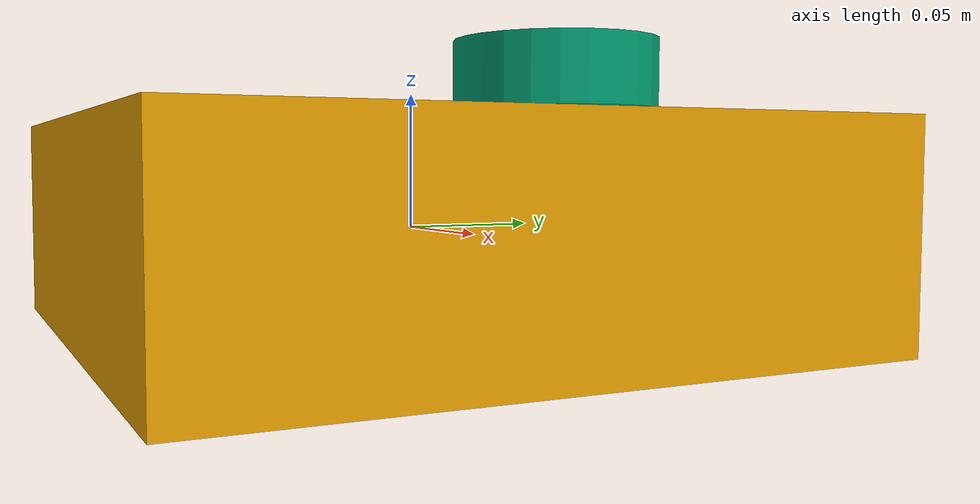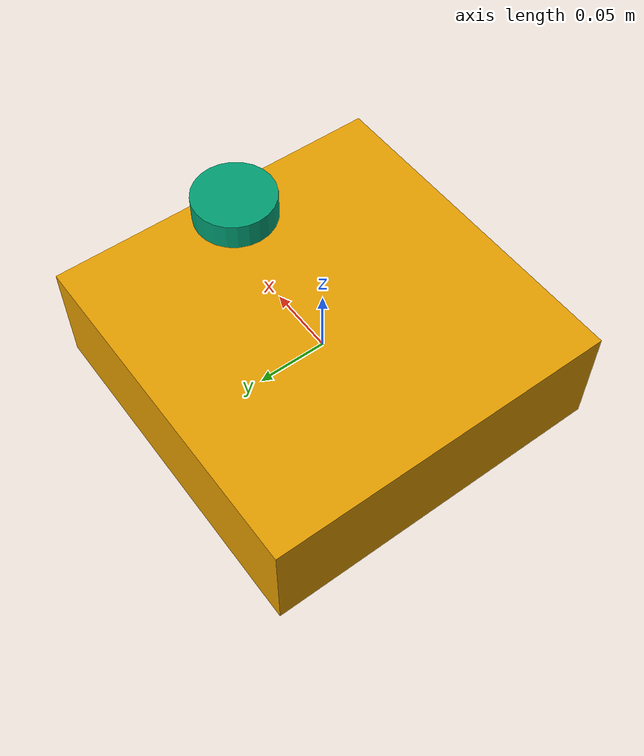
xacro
<?xml version="1.0"?><robot xmlns:xacro="http://www.ros.org/wiki/xacro" name="robofest_drone"><link name="base_link"><inertial><mass value="0.42"/><inertia ixx="0.001" ixy="0" ixz="0" iyy="0.001" iyz="0" izz="0.001"/></inertial><visual><geometry><box size="0.25 0.25 0.08"/></geometry></visual></link><link name="camera_link"><visual><geometry><box size="0.04 0.04 0.02"/></geometry></visual></link><joint name="camera_joint" type="fixed"><parent link="base_link"/><child link="camera_link"/><origin xyz="0 0 -0.05" rpy="0 3.14159 0"/></joint><link name="lidar_link"><visual><geometry><cylinder radius="0.03" length="0.02"/></geometry></visual></link><joint name="lidar_joint" type="fixed"><parent link="base_link"/><child link="lidar_link"/><origin xyz="0.10 0 0.05" rpy="0 0 0"/></joint></robot>
